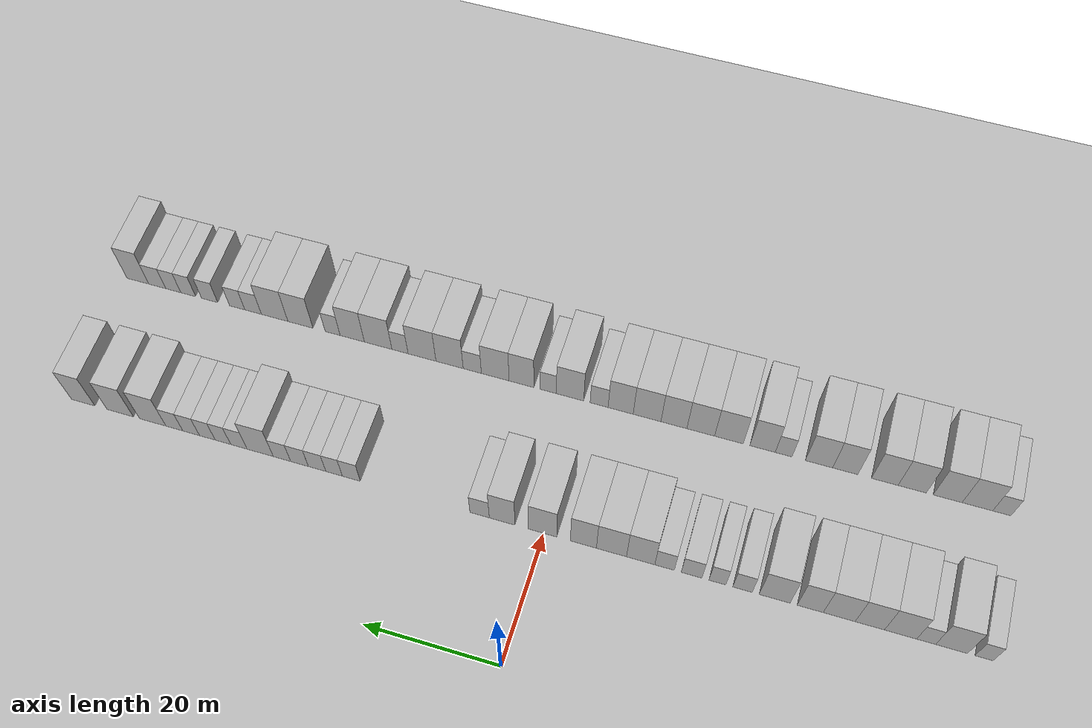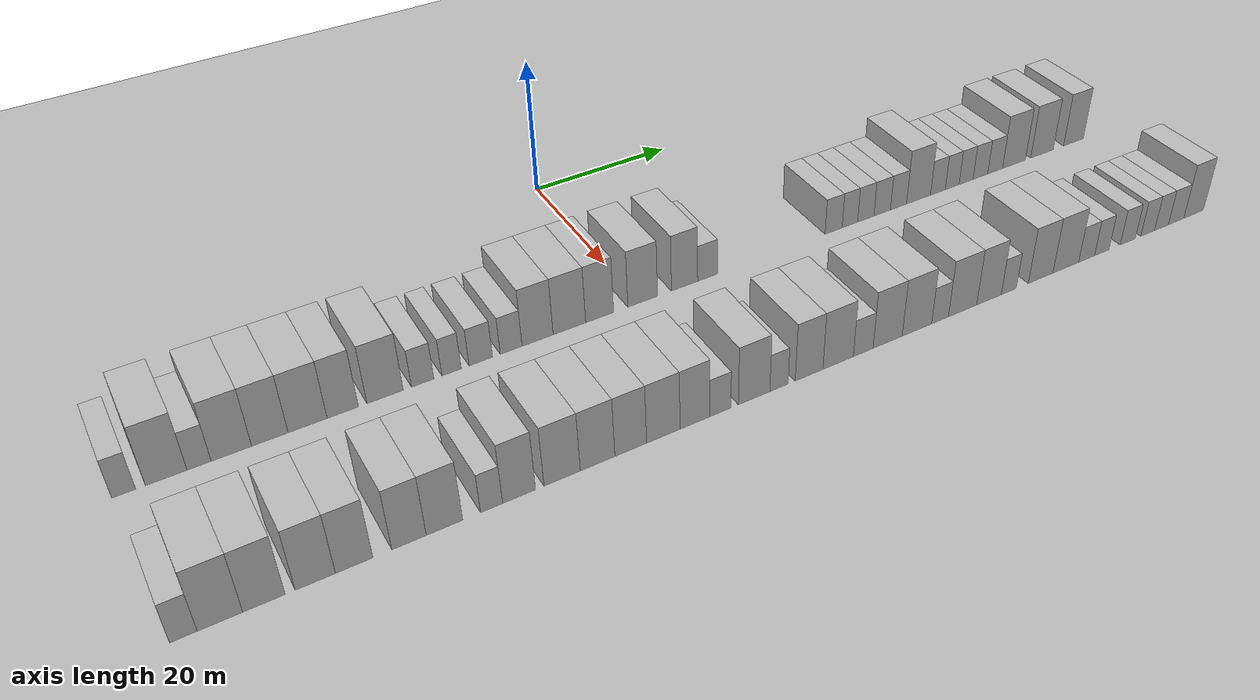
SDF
<sdf version="1.6">
 <world name="default">
  <include><name>ground_plane_1</name><uri>model://HANNAS_ground_plane</uri></include>
  <include>
   <name>ground_plane_2</name>
   <uri>model://HANNAS_ground_plane</uri>
   <pose>100 0 0  0 0 0</pose>
  </include>
  <model name="building_33">
   <static>1</static>
   <pose>25.0000 -62.6714 0 0.000000 0.000000 0.000000</pose>
   <link name="link">
    <pose>0 0 3.00 0 0 0</pose>
    <collision name="collision"><geometry><box><size>10.0000 2.4775 6.0000</size></box></geometry></collision>
    <visual name="visual">
     <cast_shadows>0</cast_shadows>
     <geometry><box><size>10.0000 2.4775 6.0000</size></box></geometry>
     <material>
      <script>
       <uri>model://HANNAS_wall/materials/scripts</uri>
       <uri>model://HANNAS_wall/materials/textures</uri>
       <name>vrc/HANNAS_wall</name>
      </script>
     </material>
    </visual>
   </link>
  </model>
  <model name="building_34">
   <static>1</static>
   <pose>25.0000 -58.2343 0 0.000000 0.000000 0.000000</pose>
   <link name="link">
    <pose>0 0 4.50 0 0 0</pose>
    <collision name="collision"><geometry><box><size>10.0000 4.3966 9.0000</size></box></geometry></collision>
    <visual name="visual">
     <cast_shadows>0</cast_shadows>
     <geometry><box><size>10.0000 4.3966 9.0000</size></box></geometry>
     <material>
      <script>
       <uri>model://HANNAS_wall/materials/scripts</uri>
       <uri>model://HANNAS_wall/materials/textures</uri>
       <name>vrc/HANNAS_wall</name>
      </script>
     </material>
    </visual>
   </link>
  </model>
  <model name="building_35">
   <static>1</static>
   <pose>25.0000 -54.7356 0 0.000000 0.000000 0.000000</pose>
   <link name="link">
    <pose>0 0 3.00 0 0 0</pose>
    <collision name="collision"><geometry><box><size>10.0000 2.6008 6.0000</size></box></geometry></collision>
    <visual name="visual">
     <cast_shadows>0</cast_shadows>
     <geometry><box><size>10.0000 2.6008 6.0000</size></box></geometry>
     <material>
      <script>
       <uri>model://HANNAS_wall/materials/scripts</uri>
       <uri>model://HANNAS_wall/materials/textures</uri>
       <name>vrc/HANNAS_wall</name>
      </script>
     </material>
    </visual>
   </link>
  </model>
  <model name="building_36">
   <static>1</static>
   <pose>25.0000 -51.2147 0 0.000000 0.000000 0.000000</pose>
   <link name="link">
    <pose>0 0 4.50 0 0 0</pose>
    <collision name="collision"><geometry><box><size>10.0000 4.4411 9.0000</size></box></geometry></collision>
    <visual name="visual">
     <cast_shadows>0</cast_shadows>
     <geometry><box><size>10.0000 4.4411 9.0000</size></box></geometry>
     <material>
      <script>
       <uri>model://HANNAS_wall/materials/scripts</uri>
       <uri>model://HANNAS_wall/materials/textures</uri>
       <name>vrc/HANNAS_wall</name>
      </script>
     </material>
    </visual>
   </link>
  </model>
  <model name="building_37">
   <static>1</static>
   <pose>25.0000 -46.9516 0 0.000000 0.000000 0.000000</pose>
   <link name="link">
    <pose>0 0 4.50 0 0 0</pose>
    <collision name="collision"><geometry><box><size>10.0000 4.0851 9.0000</size></box></geometry></collision>
    <visual name="visual">
     <cast_shadows>0</cast_shadows>
     <geometry><box><size>10.0000 4.0851 9.0000</size></box></geometry>
     <material>
      <script>
       <uri>model://HANNAS_wall/materials/scripts</uri>
       <uri>model://HANNAS_wall/materials/textures</uri>
       <name>vrc/HANNAS_wall</name>
      </script>
     </material>
    </visual>
   </link>
  </model>
  <model name="building_38">
   <static>1</static>
   <pose>25.0000 -42.6696 0 0.000000 0.000000 0.000000</pose>
   <link name="link">
    <pose>0 0 4.50 0 0 0</pose>
    <collision name="collision"><geometry><box><size>10.0000 4.4789 9.0000</size></box></geometry></collision>
    <visual name="visual">
     <cast_shadows>0</cast_shadows>
     <geometry><box><size>10.0000 4.4789 9.0000</size></box></geometry>
     <material>
      <script>
       <uri>model://HANNAS_wall/materials/scripts</uri>
       <uri>model://HANNAS_wall/materials/textures</uri>
       <name>vrc/HANNAS_wall</name>
      </script>
     </material>
    </visual>
   </link>
  </model>
  <model name="building_39">
   <static>1</static>
   <pose>25.0000 -38.5943 0 0.000000 0.000000 0.000000</pose>
   <link name="link">
    <pose>0 0 4.50 0 0 0</pose>
    <collision name="collision"><geometry><box><size>10.0000 3.6718 9.0000</size></box></geometry></collision>
    <visual name="visual">
     <cast_shadows>0</cast_shadows>
     <geometry><box><size>10.0000 3.6718 9.0000</size></box></geometry>
     <material>
      <script>
       <uri>model://HANNAS_wall/materials/scripts</uri>
       <uri>model://HANNAS_wall/materials/textures</uri>
       <name>vrc/HANNAS_wall</name>
      </script>
     </material>
    </visual>
   </link>
  </model>
  <model name="building_40">
   <static>1</static>
   <pose>25.0000 -33.5643 0 0.000000 0.000000 0.000000</pose>
   <link name="link">
    <pose>0 0 4.50 0 0 0</pose>
    <collision name="collision"><geometry><box><size>10.0000 4.3882 9.0000</size></box></geometry></collision>
    <visual name="visual">
     <cast_shadows>0</cast_shadows>
     <geometry><box><size>10.0000 4.3882 9.0000</size></box></geometry>
     <material>
      <script>
       <uri>model://HANNAS_wall/materials/scripts</uri>
       <uri>model://HANNAS_wall/materials/textures</uri>
       <name>vrc/HANNAS_wall</name>
      </script>
     </material>
    </visual>
   </link>
  </model>
  <model name="building_41">
   <static>1</static>
   <pose>25.0000 -28.9870 0 0.000000 0.000000 0.000000</pose>
   <link name="link">
    <pose>0 0 3.00 0 0 0</pose>
    <collision name="collision"><geometry><box><size>10.0000 2.7664 6.0000</size></box></geometry></collision>
    <visual name="visual">
     <cast_shadows>0</cast_shadows>
     <geometry><box><size>10.0000 2.7664 6.0000</size></box></geometry>
     <material>
      <script>
       <uri>model://HANNAS_wall/materials/scripts</uri>
       <uri>model://HANNAS_wall/materials/textures</uri>
       <name>vrc/HANNAS_wall</name>
      </script>
     </material>
    </visual>
   </link>
  </model>
  <model name="building_42">
   <static>1</static>
   <pose>25.0000 -25.3923 0 0.000000 0.000000 0.000000</pose>
   <link name="link">
    <pose>0 0 3.00 0 0 0</pose>
    <collision name="collision"><geometry><box><size>10.0000 2.4228 6.0000</size></box></geometry></collision>
    <visual name="visual">
     <cast_shadows>0</cast_shadows>
     <geometry><box><size>10.0000 2.4228 6.0000</size></box></geometry>
     <material>
      <script>
       <uri>model://HANNAS_wall/materials/scripts</uri>
       <uri>model://HANNAS_wall/materials/textures</uri>
       <name>vrc/HANNAS_wall</name>
      </script>
     </material>
    </visual>
   </link>
  </model>
  <model name="building_43">
   <static>1</static>
   <pose>25.0000 -21.6845 0 0.000000 0.000000 0.000000</pose>
   <link name="link">
    <pose>0 0 3.00 0 0 0</pose>
    <collision name="collision"><geometry><box><size>10.0000 2.9929 6.0000</size></box></geometry></collision>
    <visual name="visual">
     <cast_shadows>0</cast_shadows>
     <geometry><box><size>10.0000 2.9929 6.0000</size></box></geometry>
     <material>
      <script>
       <uri>model://HANNAS_wall/materials/scripts</uri>
       <uri>model://HANNAS_wall/materials/textures</uri>
       <name>vrc/HANNAS_wall</name>
      </script>
     </material>
    </visual>
   </link>
  </model>
  <model name="building_44">
   <static>1</static>
   <pose>25.0000 -17.7682 0 0.000000 0.000000 0.000000</pose>
   <link name="link">
    <pose>0 0 3.00 0 0 0</pose>
    <collision name="collision"><geometry><box><size>10.0000 2.8396 6.0000</size></box></geometry></collision>
    <visual name="visual">
     <cast_shadows>0</cast_shadows>
     <geometry><box><size>10.0000 2.8396 6.0000</size></box></geometry>
     <material>
      <script>
       <uri>model://HANNAS_wall/materials/scripts</uri>
       <uri>model://HANNAS_wall/materials/textures</uri>
       <name>vrc/HANNAS_wall</name>
      </script>
     </material>
    </visual>
   </link>
  </model>
  <model name="building_45">
   <static>1</static>
   <pose>25.0000 -14.2849 0 0.000000 0.000000 0.000000</pose>
   <link name="link">
    <pose>0 0 4.50 0 0 0</pose>
    <collision name="collision"><geometry><box><size>10.0000 4.1270 9.0000</size></box></geometry></collision>
    <visual name="visual">
     <cast_shadows>0</cast_shadows>
     <geometry><box><size>10.0000 4.1270 9.0000</size></box></geometry>
     <material>
      <script>
       <uri>model://HANNAS_wall/materials/scripts</uri>
       <uri>model://HANNAS_wall/materials/textures</uri>
       <name>vrc/HANNAS_wall</name>
      </script>
     </material>
    </visual>
   </link>
  </model>
  <model name="building_46">
   <static>1</static>
   <pose>25.0000 -10.0117 0 0.000000 0.000000 0.000000</pose>
   <link name="link">
    <pose>0 0 4.50 0 0 0</pose>
    <collision name="collision"><geometry><box><size>10.0000 4.4192 9.0000</size></box></geometry></collision>
    <visual name="visual">
     <cast_shadows>0</cast_shadows>
     <geometry><box><size>10.0000 4.4192 9.0000</size></box></geometry>
     <material>
      <script>
       <uri>model://HANNAS_wall/materials/scripts</uri>
       <uri>model://HANNAS_wall/materials/textures</uri>
       <name>vrc/HANNAS_wall</name>
      </script>
     </material>
    </visual>
   </link>
  </model>
  <model name="building_47">
   <static>1</static>
   <pose>25.0000 -5.8763 0 0.000000 0.000000 0.000000</pose>
   <link name="link">
    <pose>0 0 4.50 0 0 0</pose>
    <collision name="collision"><geometry><box><size>10.0000 3.8517 9.0000</size></box></geometry></collision>
    <visual name="visual">
     <cast_shadows>0</cast_shadows>
     <geometry><box><size>10.0000 3.8517 9.0000</size></box></geometry>
     <material>
      <script>
       <uri>model://HANNAS_wall/materials/scripts</uri>
       <uri>model://HANNAS_wall/materials/textures</uri>
       <name>vrc/HANNAS_wall</name>
      </script>
     </material>
    </visual>
   </link>
  </model>
  <model name="building_48">
   <static>1</static>
   <pose>25.0000 0.1629 0 0.000000 0.000000 0.000000</pose>
   <link name="link">
    <pose>0 0 4.50 0 0 0</pose>
    <collision name="collision"><geometry><box><size>10.0000 4.2267 9.0000</size></box></geometry></collision>
    <visual name="visual">
     <cast_shadows>0</cast_shadows>
     <geometry><box><size>10.0000 4.2267 9.0000</size></box></geometry>
     <material>
      <script>
       <uri>model://HANNAS_wall/materials/scripts</uri>
       <uri>model://HANNAS_wall/materials/textures</uri>
       <name>vrc/HANNAS_wall</name>
      </script>
     </material>
    </visual>
   </link>
  </model>
  <model name="building_49">
   <static>1</static>
   <pose>25.0000 6.2037 0 0.000000 0.000000 0.000000</pose>
   <link name="link">
    <pose>0 0 4.50 0 0 0</pose>
    <collision name="collision"><geometry><box><size>10.0000 3.8548 9.0000</size></box></geometry></collision>
    <visual name="visual">
     <cast_shadows>0</cast_shadows>
     <geometry><box><size>10.0000 3.8548 9.0000</size></box></geometry>
     <material>
      <script>
       <uri>model://HANNAS_wall/materials/scripts</uri>
       <uri>model://HANNAS_wall/materials/textures</uri>
       <name>vrc/HANNAS_wall</name>
      </script>
     </material>
    </visual>
   </link>
  </model>
  <model name="building_50">
   <static>1</static>
   <pose>25.0000 9.5866 0 0.000000 0.000000 0.000000</pose>
   <link name="link">
    <pose>0 0 3.00 0 0 0</pose>
    <collision name="collision"><geometry><box><size>10.0000 2.9111 6.0000</size></box></geometry></collision>
    <visual name="visual">
     <cast_shadows>0</cast_shadows>
     <geometry><box><size>10.0000 2.9111 6.0000</size></box></geometry>
     <material>
      <script>
       <uri>model://HANNAS_wall/materials/scripts</uri>
       <uri>model://HANNAS_wall/materials/textures</uri>
       <name>vrc/HANNAS_wall</name>
      </script>
     </material>
    </visual>
   </link>
  </model>
  <model name="building_51">
   <static>1</static>
   <pose>25.0000 29.2199 0 0.000000 0.000000 0.000000</pose>
   <link name="link">
    <pose>0 0 3.00 0 0 0</pose>
    <collision name="collision"><geometry><box><size>10.0000 2.7852 6.0000</size></box></geometry></collision>
    <visual name="visual">
     <cast_shadows>0</cast_shadows>
     <geometry><box><size>10.0000 2.7852 6.0000</size></box></geometry>
     <material>
      <script>
       <uri>model://HANNAS_wall/materials/scripts</uri>
       <uri>model://HANNAS_wall/materials/textures</uri>
       <name>vrc/HANNAS_wall</name>
      </script>
     </material>
    </visual>
   </link>
  </model>
  <model name="building_52">
   <static>1</static>
   <pose>25.0000 31.8865 0 0.000000 0.000000 0.000000</pose>
   <link name="link">
    <pose>0 0 3.00 0 0 0</pose>
    <collision name="collision"><geometry><box><size>10.0000 2.5481 6.0000</size></box></geometry></collision>
    <visual name="visual">
     <cast_shadows>0</cast_shadows>
     <geometry><box><size>10.0000 2.5481 6.0000</size></box></geometry>
     <material>
      <script>
       <uri>model://HANNAS_wall/materials/scripts</uri>
       <uri>model://HANNAS_wall/materials/textures</uri>
       <name>vrc/HANNAS_wall</name>
      </script>
     </material>
    </visual>
   </link>
  </model>
  <model name="building_53">
   <static>1</static>
   <pose>25.0000 34.5204 0 0.000000 0.000000 0.000000</pose>
   <link name="link">
    <pose>0 0 3.00 0 0 0</pose>
    <collision name="collision"><geometry><box><size>10.0000 2.7196 6.0000</size></box></geometry></collision>
    <visual name="visual">
     <cast_shadows>0</cast_shadows>
     <geometry><box><size>10.0000 2.7196 6.0000</size></box></geometry>
     <material>
      <script>
       <uri>model://HANNAS_wall/materials/scripts</uri>
       <uri>model://HANNAS_wall/materials/textures</uri>
       <name>vrc/HANNAS_wall</name>
      </script>
     </material>
    </visual>
   </link>
  </model>
  <model name="building_54">
   <static>1</static>
   <pose>25.0000 37.2696 0 0.000000 0.000000 0.000000</pose>
   <link name="link">
    <pose>0 0 3.00 0 0 0</pose>
    <collision name="collision"><geometry><box><size>10.0000 2.7787 6.0000</size></box></geometry></collision>
    <visual name="visual">
     <cast_shadows>0</cast_shadows>
     <geometry><box><size>10.0000 2.7787 6.0000</size></box></geometry>
     <material>
      <script>
       <uri>model://HANNAS_wall/materials/scripts</uri>
       <uri>model://HANNAS_wall/materials/textures</uri>
       <name>vrc/HANNAS_wall</name>
      </script>
     </material>
    </visual>
   </link>
  </model>
  <model name="building_55">
   <static>1</static>
   <pose>25.0000 40.0288 0 0.000000 0.000000 0.000000</pose>
   <link name="link">
    <pose>0 0 3.00 0 0 0</pose>
    <collision name="collision"><geometry><box><size>10.0000 2.7397 6.0000</size></box></geometry></collision>
    <visual name="visual">
     <cast_shadows>0</cast_shadows>
     <geometry><box><size>10.0000 2.7397 6.0000</size></box></geometry>
     <material>
      <script>
       <uri>model://HANNAS_wall/materials/scripts</uri>
       <uri>model://HANNAS_wall/materials/textures</uri>
       <name>vrc/HANNAS_wall</name>
      </script>
     </material>
    </visual>
   </link>
  </model>
  <model name="building_56">
   <static>1</static>
   <pose>25.0000 43.4785 0 0.000000 0.000000 0.000000</pose>
   <link name="link">
    <pose>0 0 4.50 0 0 0</pose>
    <collision name="collision"><geometry><box><size>10.0000 4.1596 9.0000</size></box></geometry></collision>
    <visual name="visual">
     <cast_shadows>0</cast_shadows>
     <geometry><box><size>10.0000 4.1596 9.0000</size></box></geometry>
     <material>
      <script>
       <uri>model://HANNAS_wall/materials/scripts</uri>
       <uri>model://HANNAS_wall/materials/textures</uri>
       <name>vrc/HANNAS_wall</name>
      </script>
     </material>
    </visual>
   </link>
  </model>
  <model name="building_57">
   <static>1</static>
   <pose>25.0000 46.8566 0 0.000000 0.000000 0.000000</pose>
   <link name="link">
    <pose>0 0 3.00 0 0 0</pose>
    <collision name="collision"><geometry><box><size>10.0000 2.5967 6.0000</size></box></geometry></collision>
    <visual name="visual">
     <cast_shadows>0</cast_shadows>
     <geometry><box><size>10.0000 2.5967 6.0000</size></box></geometry>
     <material>
      <script>
       <uri>model://HANNAS_wall/materials/scripts</uri>
       <uri>model://HANNAS_wall/materials/textures</uri>
       <name>vrc/HANNAS_wall</name>
      </script>
     </material>
    </visual>
   </link>
  </model>
  <model name="building_58">
   <static>1</static>
   <pose>25.0000 49.3823 0 0.000000 0.000000 0.000000</pose>
   <link name="link">
    <pose>0 0 3.00 0 0 0</pose>
    <collision name="collision"><geometry><box><size>10.0000 2.4547 6.0000</size></box></geometry></collision>
    <visual name="visual">
     <cast_shadows>0</cast_shadows>
     <geometry><box><size>10.0000 2.4547 6.0000</size></box></geometry>
     <material>
      <script>
       <uri>model://HANNAS_wall/materials/scripts</uri>
       <uri>model://HANNAS_wall/materials/textures</uri>
       <name>vrc/HANNAS_wall</name>
      </script>
     </material>
    </visual>
   </link>
  </model>
  <model name="building_59">
   <static>1</static>
   <pose>25.0000 51.8646 0 0.000000 0.000000 0.000000</pose>
   <link name="link">
    <pose>0 0 3.00 0 0 0</pose>
    <collision name="collision"><geometry><box><size>10.0000 2.5100 6.0000</size></box></geometry></collision>
    <visual name="visual">
     <cast_shadows>0</cast_shadows>
     <geometry><box><size>10.0000 2.5100 6.0000</size></box></geometry>
     <material>
      <script>
       <uri>model://HANNAS_wall/materials/scripts</uri>
       <uri>model://HANNAS_wall/materials/textures</uri>
       <name>vrc/HANNAS_wall</name>
      </script>
     </material>
    </visual>
   </link>
  </model>
  <model name="building_60">
   <static>1</static>
   <pose>25.0000 54.4542 0 0.000000 0.000000 0.000000</pose>
   <link name="link">
    <pose>0 0 3.00 0 0 0</pose>
    <collision name="collision"><geometry><box><size>10.0000 2.6693 6.0000</size></box></geometry></collision>
    <visual name="visual">
     <cast_shadows>0</cast_shadows>
     <geometry><box><size>10.0000 2.6693 6.0000</size></box></geometry>
     <material>
      <script>
       <uri>model://HANNAS_wall/materials/scripts</uri>
       <uri>model://HANNAS_wall/materials/textures</uri>
       <name>vrc/HANNAS_wall</name>
      </script>
     </material>
    </visual>
   </link>
  </model>
  <model name="building_61">
   <static>1</static>
   <pose>25.0000 57.1441 0 0.000000 0.000000 0.000000</pose>
   <link name="link">
    <pose>0 0 3.00 0 0 0</pose>
    <collision name="collision"><geometry><box><size>10.0000 2.7105 6.0000</size></box></geometry></collision>
    <visual name="visual">
     <cast_shadows>0</cast_shadows>
     <geometry><box><size>10.0000 2.7105 6.0000</size></box></geometry>
     <material>
      <script>
       <uri>model://HANNAS_wall/materials/scripts</uri>
       <uri>model://HANNAS_wall/materials/textures</uri>
       <name>vrc/HANNAS_wall</name>
      </script>
     </material>
    </visual>
   </link>
  </model>
  <model name="building_62">
   <static>1</static>
   <pose>25.0000 60.6363 0 0.000000 0.000000 0.000000</pose>
   <link name="link">
    <pose>0 0 4.50 0 0 0</pose>
    <collision name="collision"><geometry><box><size>10.0000 4.2738 9.0000</size></box></geometry></collision>
    <visual name="visual">
     <cast_shadows>0</cast_shadows>
     <geometry><box><size>10.0000 4.2738 9.0000</size></box></geometry>
     <material>
      <script>
       <uri>model://HANNAS_wall/materials/scripts</uri>
       <uri>model://HANNAS_wall/materials/textures</uri>
       <name>vrc/HANNAS_wall</name>
      </script>
     </material>
    </visual>
   </link>
  </model>
  <model name="building_63">
   <static>1</static>
   <pose>25.0000 65.9166 0 0.000000 0.000000 0.000000</pose>
   <link name="link">
    <pose>0 0 4.50 0 0 0</pose>
    <collision name="collision"><geometry><box><size>10.0000 4.2868 9.0000</size></box></geometry></collision>
    <visual name="visual">
     <cast_shadows>0</cast_shadows>
     <geometry><box><size>10.0000 4.2868 9.0000</size></box></geometry>
     <material>
      <script>
       <uri>model://HANNAS_wall/materials/scripts</uri>
       <uri>model://HANNAS_wall/materials/textures</uri>
       <name>vrc/HANNAS_wall</name>
      </script>
     </material>
    </visual>
   </link>
  </model>
  <model name="building_64">
   <static>1</static>
   <pose>25.0000 71.9795 0 0.000000 0.000000 0.000000</pose>
   <link name="link">
    <pose>0 0 4.50 0 0 0</pose>
    <collision name="collision"><geometry><box><size>10.0000 3.8390 9.0000</size></box></geometry></collision>
    <visual name="visual">
     <cast_shadows>0</cast_shadows>
     <geometry><box><size>10.0000 3.8390 9.0000</size></box></geometry>
     <material>
      <script>
       <uri>model://HANNAS_wall/materials/scripts</uri>
       <uri>model://HANNAS_wall/materials/textures</uri>
       <name>vrc/HANNAS_wall</name>
      </script>
     </material>
    </visual>
   </link>
  </model>
  <model name="building_133">
   <static>1</static>
   <pose>47.0000 -62.0608 0 0.000000 0.000000 0.000000</pose>
   <link name="link">
    <pose>0 0 3.00 0 0 0</pose>
    <collision name="collision"><geometry><box><size>10.0000 2.6163 6.0000</size></box></geometry></collision>
    <visual name="visual">
     <cast_shadows>0</cast_shadows>
     <geometry><box><size>10.0000 2.6163 6.0000</size></box></geometry>
     <material>
      <script>
       <uri>model://HANNAS_wall/materials/scripts</uri>
       <uri>model://HANNAS_wall/materials/textures</uri>
       <name>vrc/HANNAS_wall</name>
      </script>
     </material>
    </visual>
   </link>
  </model>
  <model name="building_134">
   <static>1</static>
   <pose>47.0000 -58.5568 0 0.000000 0.000000 0.000000</pose>
   <link name="link">
    <pose>0 0 4.50 0 0 0</pose>
    <collision name="collision"><geometry><box><size>10.0000 4.3919 9.0000</size></box></geometry></collision>
    <visual name="visual">
     <cast_shadows>0</cast_shadows>
     <geometry><box><size>10.0000 4.3919 9.0000</size></box></geometry>
     <material>
      <script>
       <uri>model://HANNAS_wall/materials/scripts</uri>
       <uri>model://HANNAS_wall/materials/textures</uri>
       <name>vrc/HANNAS_wall</name>
      </script>
     </material>
    </visual>
   </link>
  </model>
  <model name="building_135">
   <static>1</static>
   <pose>47.0000 -54.2681 0 0.000000 0.000000 0.000000</pose>
   <link name="link">
    <pose>0 0 4.50 0 0 0</pose>
    <collision name="collision"><geometry><box><size>10.0000 4.1855 9.0000</size></box></geometry></collision>
    <visual name="visual">
     <cast_shadows>0</cast_shadows>
     <geometry><box><size>10.0000 4.1855 9.0000</size></box></geometry>
     <material>
      <script>
       <uri>model://HANNAS_wall/materials/scripts</uri>
       <uri>model://HANNAS_wall/materials/textures</uri>
       <name>vrc/HANNAS_wall</name>
      </script>
     </material>
    </visual>
   </link>
  </model>
  <model name="building_136">
   <static>1</static>
   <pose>47.0000 -49.1224 0 0.000000 0.000000 0.000000</pose>
   <link name="link">
    <pose>0 0 4.50 0 0 0</pose>
    <collision name="collision"><geometry><box><size>10.0000 4.1058 9.0000</size></box></geometry></collision>
    <visual name="visual">
     <cast_shadows>0</cast_shadows>
     <geometry><box><size>10.0000 4.1058 9.0000</size></box></geometry>
     <material>
      <script>
       <uri>model://HANNAS_wall/materials/scripts</uri>
       <uri>model://HANNAS_wall/materials/textures</uri>
       <name>vrc/HANNAS_wall</name>
      </script>
     </material>
    </visual>
   </link>
  </model>
  <model name="building_137">
   <static>1</static>
   <pose>47.0000 -45.1108 0 0.000000 0.000000 0.000000</pose>
   <link name="link">
    <pose>0 0 4.50 0 0 0</pose>
    <collision name="collision"><geometry><box><size>10.0000 3.9173 9.0000</size></box></geometry></collision>
    <visual name="visual">
     <cast_shadows>0</cast_shadows>
     <geometry><box><size>10.0000 3.9173 9.0000</size></box></geometry>
     <material>
      <script>
       <uri>model://HANNAS_wall/materials/scripts</uri>
       <uri>model://HANNAS_wall/materials/textures</uri>
       <name>vrc/HANNAS_wall</name>
      </script>
     </material>
    </visual>
   </link>
  </model>
  <model name="building_138">
   <static>1</static>
   <pose>47.0000 -39.2840 0 0.000000 0.000000 0.000000</pose>
   <link name="link">
    <pose>0 0 4.50 0 0 0</pose>
    <collision name="collision"><geometry><box><size>10.0000 3.7363 9.0000</size></box></geometry></collision>
    <visual name="visual">
     <cast_shadows>0</cast_shadows>
     <geometry><box><size>10.0000 3.7363 9.0000</size></box></geometry>
     <material>
      <script>
       <uri>model://HANNAS_wall/materials/scripts</uri>
       <uri>model://HANNAS_wall/materials/textures</uri>
       <name>vrc/HANNAS_wall</name>
      </script>
     </material>
    </visual>
   </link>
  </model>
  <model name="building_139">
   <static>1</static>
   <pose>47.0000 -35.4017 0 0.000000 0.000000 0.000000</pose>
   <link name="link">
    <pose>0 0 4.50 0 0 0</pose>
    <collision name="collision"><geometry><box><size>10.0000 4.0281 9.0000</size></box></geometry></collision>
    <visual name="visual">
     <cast_shadows>0</cast_shadows>
     <geometry><box><size>10.0000 4.0281 9.0000</size></box></geometry>
     <material>
      <script>
       <uri>model://HANNAS_wall/materials/scripts</uri>
       <uri>model://HANNAS_wall/materials/textures</uri>
       <name>vrc/HANNAS_wall</name>
      </script>
     </material>
    </visual>
   </link>
  </model>
  <model name="building_140">
   <static>1</static>
   <pose>47.0000 -30.1337 0 0.000000 0.000000 0.000000</pose>
   <link name="link">
    <pose>0 0 3.00 0 0 0</pose>
    <collision name="collision"><geometry><box><size>10.0000 2.5078 6.0000</size></box></geometry></collision>
    <visual name="visual">
     <cast_shadows>0</cast_shadows>
     <geometry><box><size>10.0000 2.5078 6.0000</size></box></geometry>
     <material>
      <script>
       <uri>model://HANNAS_wall/materials/scripts</uri>
       <uri>model://HANNAS_wall/materials/textures</uri>
       <name>vrc/HANNAS_wall</name>
      </script>
     </material>
    </visual>
   </link>
  </model>
  <model name="building_141">
   <static>1</static>
   <pose>47.0000 -26.9715 0 0.000000 0.000000 0.000000</pose>
   <link name="link">
    <pose>0 0 4.50 0 0 0</pose>
    <collision name="collision"><geometry><box><size>10.0000 3.8167 9.0000</size></box></geometry></collision>
    <visual name="visual">
     <cast_shadows>0</cast_shadows>
     <geometry><box><size>10.0000 3.8167 9.0000</size></box></geometry>
     <material>
      <script>
       <uri>model://HANNAS_wall/materials/scripts</uri>
       <uri>model://HANNAS_wall/materials/textures</uri>
       <name>vrc/HANNAS_wall</name>
      </script>
     </material>
    </visual>
   </link>
  </model>
  <model name="building_142">
   <static>1</static>
   <pose>47.0000 -21.9004 0 0.000000 0.000000 0.000000</pose>
   <link name="link">
    <pose>0 0 4.50 0 0 0</pose>
    <collision name="collision"><geometry><box><size>10.0000 4.3256 9.0000</size></box></geometry></collision>
    <visual name="visual">
     <cast_shadows>0</cast_shadows>
     <geometry><box><size>10.0000 4.3256 9.0000</size></box></geometry>
     <material>
      <script>
       <uri>model://HANNAS_wall/materials/scripts</uri>
       <uri>model://HANNAS_wall/materials/textures</uri>
       <name>vrc/HANNAS_wall</name>
      </script>
     </material>
    </visual>
   </link>
  </model>
  <model name="building_143">
   <static>1</static>
   <pose>47.0000 -17.6285 0 0.000000 0.000000 0.000000</pose>
   <link name="link">
    <pose>0 0 4.50 0 0 0</pose>
    <collision name="collision"><geometry><box><size>10.0000 4.2182 9.0000</size></box></geometry></collision>
    <visual name="visual">
     <cast_shadows>0</cast_shadows>
     <geometry><box><size>10.0000 4.2182 9.0000</size></box></geometry>
     <material>
      <script>
       <uri>model://HANNAS_wall/materials/scripts</uri>
       <uri>model://HANNAS_wall/materials/textures</uri>
       <name>vrc/HANNAS_wall</name>
      </script>
     </material>
    </visual>
   </link>
  </model>
  <model name="building_144">
   <static>1</static>
   <pose>47.0000 -13.5398 0 0.000000 0.000000 0.000000</pose>
   <link name="link">
    <pose>0 0 4.50 0 0 0</pose>
    <collision name="collision"><geometry><box><size>10.0000 3.9590 9.0000</size></box></geometry></collision>
    <visual name="visual">
     <cast_shadows>0</cast_shadows>
     <geometry><box><size>10.0000 3.9590 9.0000</size></box></geometry>
     <material>
      <script>
       <uri>model://HANNAS_wall/materials/scripts</uri>
       <uri>model://HANNAS_wall/materials/textures</uri>
       <name>vrc/HANNAS_wall</name>
      </script>
     </material>
    </visual>
   </link>
  </model>
  <model name="building_145">
   <static>1</static>
   <pose>47.0000 -9.4246 0 0.000000 0.000000 0.000000</pose>
   <link name="link">
    <pose>0 0 4.50 0 0 0</pose>
    <collision name="collision"><geometry><box><size>10.0000 4.2713 9.0000</size></box></geometry></collision>
    <visual name="visual">
     <cast_shadows>0</cast_shadows>
     <geometry><box><size>10.0000 4.2713 9.0000</size></box></geometry>
     <material>
      <script>
       <uri>model://HANNAS_wall/materials/scripts</uri>
       <uri>model://HANNAS_wall/materials/textures</uri>
       <name>vrc/HANNAS_wall</name>
      </script>
     </material>
    </visual>
   </link>
  </model>
  <model name="building_146">
   <static>1</static>
   <pose>47.0000 -5.3444 0 0.000000 0.000000 0.000000</pose>
   <link name="link">
    <pose>0 0 4.50 0 0 0</pose>
    <collision name="collision"><geometry><box><size>10.0000 3.8891 9.0000</size></box></geometry></collision>
    <visual name="visual">
     <cast_shadows>0</cast_shadows>
     <geometry><box><size>10.0000 3.8891 9.0000</size></box></geometry>
     <material>
      <script>
       <uri>model://HANNAS_wall/materials/scripts</uri>
       <uri>model://HANNAS_wall/materials/textures</uri>
       <name>vrc/HANNAS_wall</name>
      </script>
     </material>
    </visual>
   </link>
  </model>
  <model name="building_147">
   <static>1</static>
   <pose>47.0000 -2.0068 0 0.000000 0.000000 0.000000</pose>
   <link name="link">
    <pose>0 0 3.00 0 0 0</pose>
    <collision name="collision"><geometry><box><size>10.0000 2.7861 6.0000</size></box></geometry></collision>
    <visual name="visual">
     <cast_shadows>0</cast_shadows>
     <geometry><box><size>10.0000 2.7861 6.0000</size></box></geometry>
     <material>
      <script>
       <uri>model://HANNAS_wall/materials/scripts</uri>
       <uri>model://HANNAS_wall/materials/textures</uri>
       <name>vrc/HANNAS_wall</name>
      </script>
     </material>
    </visual>
   </link>
  </model>
  <model name="building_148">
   <static>1</static>
   <pose>47.0000 2.5251 0 0.000000 0.000000 0.000000</pose>
   <link name="link">
    <pose>0 0 4.50 0 0 0</pose>
    <collision name="collision"><geometry><box><size>10.0000 4.2778 9.0000</size></box></geometry></collision>
    <visual name="visual">
     <cast_shadows>0</cast_shadows>
     <geometry><box><size>10.0000 4.2778 9.0000</size></box></geometry>
     <material>
      <script>
       <uri>model://HANNAS_wall/materials/scripts</uri>
       <uri>model://HANNAS_wall/materials/textures</uri>
       <name>vrc/HANNAS_wall</name>
      </script>
     </material>
    </visual>
   </link>
  </model>
  <model name="building_149">
   <static>1</static>
   <pose>47.0000 5.9220 0 0.000000 0.000000 0.000000</pose>
   <link name="link">
    <pose>0 0 3.00 0 0 0</pose>
    <collision name="collision"><geometry><box><size>10.0000 2.5159 6.0000</size></box></geometry></collision>
    <visual name="visual">
     <cast_shadows>0</cast_shadows>
     <geometry><box><size>10.0000 2.5159 6.0000</size></box></geometry>
     <material>
      <script>
       <uri>model://HANNAS_wall/materials/scripts</uri>
       <uri>model://HANNAS_wall/materials/textures</uri>
       <name>vrc/HANNAS_wall</name>
      </script>
     </material>
    </visual>
   </link>
  </model>
  <model name="building_150">
   <static>1</static>
   <pose>47.0000 10.1350 0 0.000000 0.000000 0.000000</pose>
   <link name="link">
    <pose>0 0 4.50 0 0 0</pose>
    <collision name="collision"><geometry><box><size>10.0000 3.9101 9.0000</size></box></geometry></collision>
    <visual name="visual">
     <cast_shadows>0</cast_shadows>
     <geometry><box><size>10.0000 3.9101 9.0000</size></box></geometry>
     <material>
      <script>
       <uri>model://HANNAS_wall/materials/scripts</uri>
       <uri>model://HANNAS_wall/materials/textures</uri>
       <name>vrc/HANNAS_wall</name>
      </script>
     </material>
    </visual>
   </link>
  </model>
  <model name="building_151">
   <static>1</static>
   <pose>47.0000 14.2893 0 0.000000 0.000000 0.000000</pose>
   <link name="link">
    <pose>0 0 4.50 0 0 0</pose>
    <collision name="collision"><geometry><box><size>10.0000 4.3985 9.0000</size></box></geometry></collision>
    <visual name="visual">
     <cast_shadows>0</cast_shadows>
     <geometry><box><size>10.0000 4.3985 9.0000</size></box></geometry>
     <material>
      <script>
       <uri>model://HANNAS_wall/materials/scripts</uri>
       <uri>model://HANNAS_wall/materials/textures</uri>
       <name>vrc/HANNAS_wall</name>
      </script>
     </material>
    </visual>
   </link>
  </model>
  <model name="building_152">
   <static>1</static>
   <pose>47.0000 17.9376 0 0.000000 0.000000 0.000000</pose>
   <link name="link">
    <pose>0 0 3.00 0 0 0</pose>
    <collision name="collision"><geometry><box><size>10.0000 2.8981 6.0000</size></box></geometry></collision>
    <visual name="visual">
     <cast_shadows>0</cast_shadows>
     <geometry><box><size>10.0000 2.8981 6.0000</size></box></geometry>
     <material>
      <script>
       <uri>model://HANNAS_wall/materials/scripts</uri>
       <uri>model://HANNAS_wall/materials/textures</uri>
       <name>vrc/HANNAS_wall</name>
      </script>
     </material>
    </visual>
   </link>
  </model>
  <model name="building_153">
   <static>1</static>
   <pose>47.0000 21.5691 0 0.000000 0.000000 0.000000</pose>
   <link name="link">
    <pose>0 0 4.50 0 0 0</pose>
    <collision name="collision"><geometry><box><size>10.0000 4.3649 9.0000</size></box></geometry></collision>
    <visual name="visual">
     <cast_shadows>0</cast_shadows>
     <geometry><box><size>10.0000 4.3649 9.0000</size></box></geometry>
     <material>
      <script>
       <uri>model://HANNAS_wall/materials/scripts</uri>
       <uri>model://HANNAS_wall/materials/textures</uri>
       <name>vrc/HANNAS_wall</name>
      </script>
     </material>
    </visual>
   </link>
  </model>
  <model name="building_154">
   <static>1</static>
   <pose>47.0000 25.9986 0 0.000000 0.000000 0.000000</pose>
   <link name="link">
    <pose>0 0 4.50 0 0 0</pose>
    <collision name="collision"><geometry><box><size>10.0000 4.4941 9.0000</size></box></geometry></collision>
    <visual name="visual">
     <cast_shadows>0</cast_shadows>
     <geometry><box><size>10.0000 4.4941 9.0000</size></box></geometry>
     <material>
      <script>
       <uri>model://HANNAS_wall/materials/scripts</uri>
       <uri>model://HANNAS_wall/materials/textures</uri>
       <name>vrc/HANNAS_wall</name>
      </script>
     </material>
    </visual>
   </link>
  </model>
  <model name="building_155">
   <static>1</static>
   <pose>47.0000 29.5549 0 0.000000 0.000000 0.000000</pose>
   <link name="link">
    <pose>0 0 3.00 0 0 0</pose>
    <collision name="collision"><geometry><box><size>10.0000 2.6185 6.0000</size></box></geometry></collision>
    <visual name="visual">
     <cast_shadows>0</cast_shadows>
     <geometry><box><size>10.0000 2.6185 6.0000</size></box></geometry>
     <material>
      <script>
       <uri>model://HANNAS_wall/materials/scripts</uri>
       <uri>model://HANNAS_wall/materials/textures</uri>
       <name>vrc/HANNAS_wall</name>
      </script>
     </material>
    </visual>
   </link>
  </model>
  <model name="building_156">
   <static>1</static>
   <pose>47.0000 33.1010 0 0.000000 0.000000 0.000000</pose>
   <link name="link">
    <pose>0 0 4.50 0 0 0</pose>
    <collision name="collision"><geometry><box><size>10.0000 4.4737 9.0000</size></box></geometry></collision>
    <visual name="visual">
     <cast_shadows>0</cast_shadows>
     <geometry><box><size>10.0000 4.4737 9.0000</size></box></geometry>
     <material>
      <script>
       <uri>model://HANNAS_wall/materials/scripts</uri>
       <uri>model://HANNAS_wall/materials/textures</uri>
       <name>vrc/HANNAS_wall</name>
      </script>
     </material>
    </visual>
   </link>
  </model>
  <model name="building_157">
   <static>1</static>
   <pose>47.0000 37.3238 0 0.000000 0.000000 0.000000</pose>
   <link name="link">
    <pose>0 0 4.50 0 0 0</pose>
    <collision name="collision"><geometry><box><size>10.0000 3.9720 9.0000</size></box></geometry></collision>
    <visual name="visual">
     <cast_shadows>0</cast_shadows>
     <geometry><box><size>10.0000 3.9720 9.0000</size></box></geometry>
     <material>
      <script>
       <uri>model://HANNAS_wall/materials/scripts</uri>
       <uri>model://HANNAS_wall/materials/textures</uri>
       <name>vrc/HANNAS_wall</name>
      </script>
     </material>
    </visual>
   </link>
  </model>
  <model name="building_158">
   <static>1</static>
   <pose>47.0000 40.5418 0 0.000000 0.000000 0.000000</pose>
   <link name="link">
    <pose>0 0 3.00 0 0 0</pose>
    <collision name="collision"><geometry><box><size>10.0000 2.4638 6.0000</size></box></geometry></collision>
    <visual name="visual">
     <cast_shadows>0</cast_shadows>
     <geometry><box><size>10.0000 2.4638 6.0000</size></box></geometry>
     <material>
      <script>
       <uri>model://HANNAS_wall/materials/scripts</uri>
       <uri>model://HANNAS_wall/materials/textures</uri>
       <name>vrc/HANNAS_wall</name>
      </script>
     </material>
    </visual>
   </link>
  </model>
  <model name="building_159">
   <static>1</static>
   <pose>47.0000 45.8468 0 0.000000 0.000000 0.000000</pose>
   <link name="link">
    <pose>0 0 4.50 0 0 0</pose>
    <collision name="collision"><geometry><box><size>10.0000 4.1462 9.0000</size></box></geometry></collision>
    <visual name="visual">
     <cast_shadows>0</cast_shadows>
     <geometry><box><size>10.0000 4.1462 9.0000</size></box></geometry>
     <material>
      <script>
       <uri>model://HANNAS_wall/materials/scripts</uri>
       <uri>model://HANNAS_wall/materials/textures</uri>
       <name>vrc/HANNAS_wall</name>
      </script>
     </material>
    </visual>
   </link>
  </model>
  <model name="building_160">
   <static>1</static>
   <pose>47.0000 50.1207 0 0.000000 0.000000 0.000000</pose>
   <link name="link">
    <pose>0 0 4.50 0 0 0</pose>
    <collision name="collision"><geometry><box><size>10.0000 4.4017 9.0000</size></box></geometry></collision>
    <visual name="visual">
     <cast_shadows>0</cast_shadows>
     <geometry><box><size>10.0000 4.4017 9.0000</size></box></geometry>
     <material>
      <script>
       <uri>model://HANNAS_wall/materials/scripts</uri>
       <uri>model://HANNAS_wall/materials/textures</uri>
       <name>vrc/HANNAS_wall</name>
      </script>
     </material>
    </visual>
   </link>
  </model>
  <model name="building_161">
   <static>1</static>
   <pose>47.0000 53.7115 0 0.000000 0.000000 0.000000</pose>
   <link name="link">
    <pose>0 0 3.00 0 0 0</pose>
    <collision name="collision"><geometry><box><size>10.0000 2.7800 6.0000</size></box></geometry></collision>
    <visual name="visual">
     <cast_shadows>0</cast_shadows>
     <geometry><box><size>10.0000 2.7800 6.0000</size></box></geometry>
     <material>
      <script>
       <uri>model://HANNAS_wall/materials/scripts</uri>
       <uri>model://HANNAS_wall/materials/textures</uri>
       <name>vrc/HANNAS_wall</name>
      </script>
     </material>
    </visual>
   </link>
  </model>
  <model name="building_162">
   <static>1</static>
   <pose>47.0000 56.3780 0 0.000000 0.000000 0.000000</pose>
   <link name="link">
    <pose>0 0 3.00 0 0 0</pose>
    <collision name="collision"><geometry><box><size>10.0000 2.5530 6.0000</size></box></geometry></collision>
    <visual name="visual">
     <cast_shadows>0</cast_shadows>
     <geometry><box><size>10.0000 2.5530 6.0000</size></box></geometry>
     <material>
      <script>
       <uri>model://HANNAS_wall/materials/scripts</uri>
       <uri>model://HANNAS_wall/materials/textures</uri>
       <name>vrc/HANNAS_wall</name>
      </script>
     </material>
    </visual>
   </link>
  </model>
  <model name="building_163">
   <static>1</static>
   <pose>47.0000 61.0141 0 0.000000 0.000000 0.000000</pose>
   <link name="link">
    <pose>0 0 3.00 0 0 0</pose>
    <collision name="collision"><geometry><box><size>10.0000 2.7192 6.0000</size></box></geometry></collision>
    <visual name="visual">
     <cast_shadows>0</cast_shadows>
     <geometry><box><size>10.0000 2.7192 6.0000</size></box></geometry>
     <material>
      <script>
       <uri>model://HANNAS_wall/materials/scripts</uri>
       <uri>model://HANNAS_wall/materials/textures</uri>
       <name>vrc/HANNAS_wall</name>
      </script>
     </material>
    </visual>
   </link>
  </model>
  <model name="building_164">
   <static>1</static>
   <pose>47.0000 64.6342 0 0.000000 0.000000 0.000000</pose>
   <link name="link">
    <pose>0 0 3.00 0 0 0</pose>
    <collision name="collision"><geometry><box><size>10.0000 2.5211 6.0000</size></box></geometry></collision>
    <visual name="visual">
     <cast_shadows>0</cast_shadows>
     <geometry><box><size>10.0000 2.5211 6.0000</size></box></geometry>
     <material>
      <script>
       <uri>model://HANNAS_wall/materials/scripts</uri>
       <uri>model://HANNAS_wall/materials/textures</uri>
       <name>vrc/HANNAS_wall</name>
      </script>
     </material>
    </visual>
   </link>
  </model>
  <model name="building_165">
   <static>1</static>
   <pose>47.0000 67.1731 0 0.000000 0.000000 0.000000</pose>
   <link name="link">
    <pose>0 0 3.00 0 0 0</pose>
    <collision name="collision"><geometry><box><size>10.0000 2.5567 6.0000</size></box></geometry></collision>
    <visual name="visual">
     <cast_shadows>0</cast_shadows>
     <geometry><box><size>10.0000 2.5567 6.0000</size></box></geometry>
     <material>
      <script>
       <uri>model://HANNAS_wall/materials/scripts</uri>
       <uri>model://HANNAS_wall/materials/textures</uri>
       <name>vrc/HANNAS_wall</name>
      </script>
     </material>
    </visual>
   </link>
  </model>
  <model name="building_166">
   <static>1</static>
   <pose>47.0000 69.8958 0 0.000000 0.000000 0.000000</pose>
   <link name="link">
    <pose>0 0 3.00 0 0 0</pose>
    <collision name="collision"><geometry><box><size>10.0000 2.8886 6.0000</size></box></geometry></collision>
    <visual name="visual">
     <cast_shadows>0</cast_shadows>
     <geometry><box><size>10.0000 2.8886 6.0000</size></box></geometry>
     <material>
      <script>
       <uri>model://HANNAS_wall/materials/scripts</uri>
       <uri>model://HANNAS_wall/materials/textures</uri>
       <name>vrc/HANNAS_wall</name>
      </script>
     </material>
    </visual>
   </link>
  </model>
  <model name="building_167">
   <static>1</static>
   <pose>47.0000 73.2032 0 0.000000 0.000000 0.000000</pose>
   <link name="link">
    <pose>0 0 4.50 0 0 0</pose>
    <collision name="collision"><geometry><box><size>10.0000 3.7264 9.0000</size></box></geometry></collision>
    <visual name="visual">
     <cast_shadows>0</cast_shadows>
     <geometry><box><size>10.0000 3.7264 9.0000</size></box></geometry>
     <material>
      <script>
       <uri>model://HANNAS_wall/materials/scripts</uri>
       <uri>model://HANNAS_wall/materials/textures</uri>
       <name>vrc/HANNAS_wall</name>
      </script>
     </material>
    </visual>
   </link>
  </model>
 </world>
</sdf>
